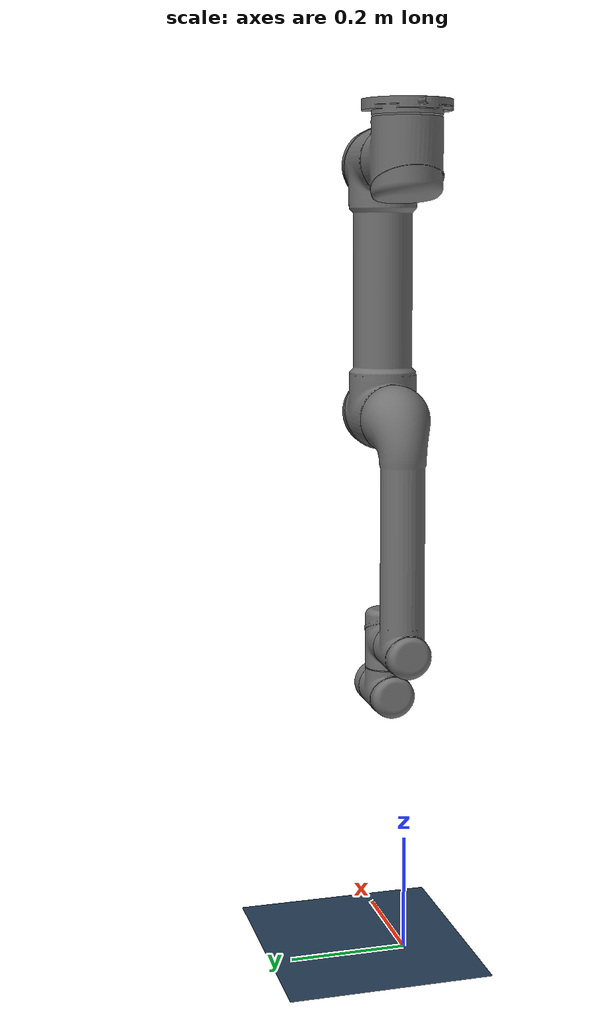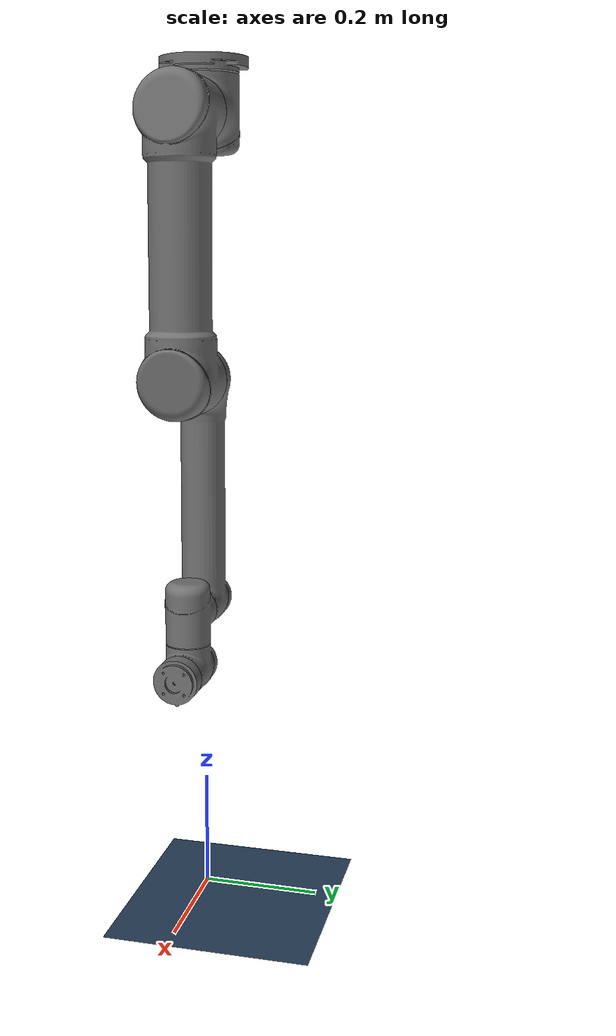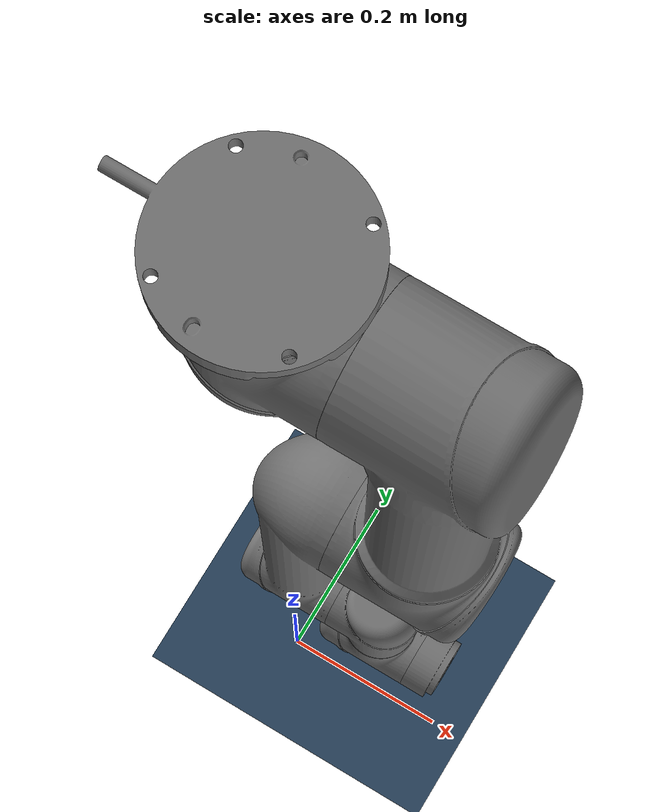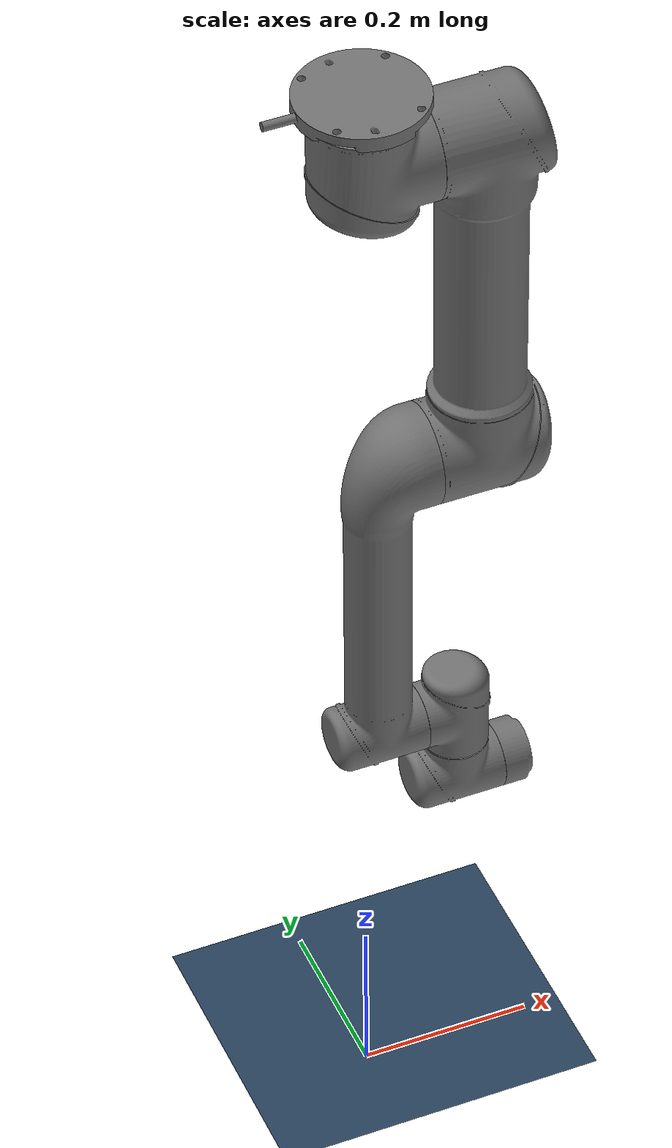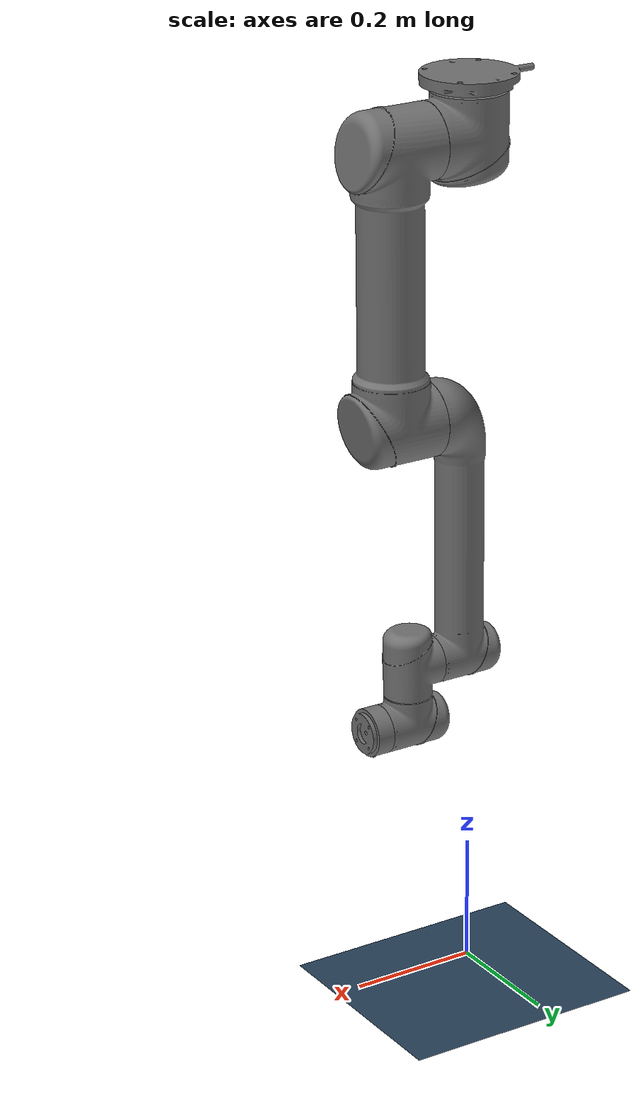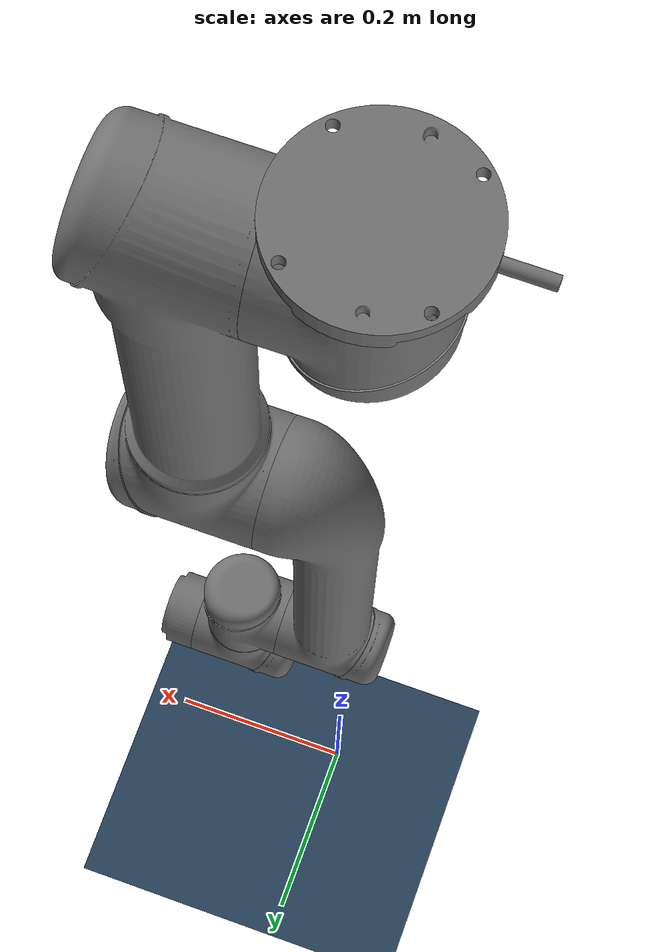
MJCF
<!--Link  MuJoCo modeling: http://www.mujoco.org/book/modeling.html-->

<mujoco model="ur5gripper">
    <compiler angle="radian"
              inertiafromgeom="true"
              texturedir="textures/"
              meshdir="mesh/visual/"/>
    <option timestep="2e-3"
            iterations="10"
            tolerance="1e-10"
            impratio="20"/>
    <size njmax="600" nconmax="150" nstack="300000"/>

    <default>
        <site rgba="0.8 0.6 0.7 0.3" type="ellipsoid" group="3"/>
        <geom contype='1' conaffinity='1' condim='4'  margin="1e-3" solref=".01 1" solimp=".99 .99 .01" />
        <joint armature="0.01" damping=".1"/>
        <default class="UR5">
            <joint damping='65'/>
        </default>
        <default class="UR5e">
            <joint damping='45'/>
        </default>
        <default class="GRIPPER">
            <joint damping='5'/>
        </default>
    </default>

    <visual>
        <map fogstart="3" fogend="5" znear="0.05"/>
        <quality shadowsize="2048"/>
        <scale framelength="0.1"
               framewidth="0.005"
               contactwidth="0.1"
               contactheight="0.005"
               forcewidth="0.01"
               />
    </visual>

    <!--Assets-->
    <asset>
        <!--Meshes-->
        <mesh name="base"           file="base.stl"     />
        <mesh name="shoulder"       file="shoulder.stl" />
        <mesh name="upperarm"       file="upperarm.stl" />
        <mesh name="forearm"        file="forearm.stl"  />
        <mesh name="wrist1"         file="wrist1.stl"   />
        <mesh name="wrist2"         file="wrist2.stl"   />
        <mesh name="wrist3"         file="wrist3.stl"   />

        <!--Textures-->
        <texture name="ur5_tex"     type="2d"       builtin="flat" height="32" width="32" rgb1="0.45 0.45 0.45" />
        <texture name="bench_tex"   type="2d"       builtin="flat" height="32" width="32" rgb1="0.7 0.7 0.7" />
        <texture name="sky_tex"     type="skybox"   builtin="gradient" width="100" height="100" rgb1="1 1 1" rgb2="0.3 0.3 0.8" />
        <texture name="texgeom"     type="cube"     builtin="flat" mark="cross" width="127" height="1278" rgb1="0.8 0.6 0.4" rgb2="0.8 0.6 0.4" markrgb="1 1 1" random="0.01" />
        <texture name="floor_tex"   type="2d"        builtin="checker" rgb1=".2 .3 .4" rgb2=".1 .2 .3" width="100" height="100" />
        <texture name="wood"        type="cube"     file="wood2.png"/>
        <texture name="metal"        type="cube"     file="metal2.png"/>
        <!--Materials-->
        <material name="ur5_mat"        texture="ur5_tex"   shininess="0.9" specular="0.75" reflectance="0.3"/>
        <material name='floor_mat'      texture="floor_tex"  shininess="0.8" texrepeat="10 10" specular="0.7"  reflectance="0.5" />
        <material name='geom'           texture="texgeom"   texuniform="true" />
        <material name="bench_mat"      texture="metal"   shininess="0.1" specular="0.5" reflectance="0.2"/>
        <material name="tablecube"      texture="wood" rgba=".8 .8 .8 1"/>
    </asset>

    <!--Contacts-->
    <contact>
		<exclude body1="base_link" body2="shoulder_link"/>
		<exclude body1="shoulder_link" body2="upper_arm_link"/>
        <exclude body1="upper_arm_link" body2="forearm_link"/>
		<exclude body1="forearm_link" body2="wrist_1_link"/>
		<exclude body1="wrist_1_link" body2="wrist_2_link"/>
        <exclude body1="wrist_2_link" body2="wrist_3_link"/>
    </contact>

    <!--MODEL DESCRIPTION-->
    <worldbody>
        <!--Lighting parameters-->
        <light name="light3" mode="targetbody" target="base_link" directional="true" pos="1 1 3" />
        <!--Camera parameters-->
        <camera name="main1" mode="fixed" target="wrist_3_link" pos="2 2 3.7" axisangle="2 2 -2 1"/>
        <!--Floor Property-->
        <geom name='floor' material="floor_mat" pos='0 0 0' size='2.5 2.5 0.1'  type='plane' />

        <!--Robot UR5-->

            <body name="base_link" pos="0 0 1.435" euler = "3.1415 0 -1.5708" >
                <inertial pos="0 0 0" quat="0.5 0.5 -0.5 0.5" mass="4" diaginertia="0.0072 0.00443333 0.00443333" />
                <geom type="mesh"  mesh="base" material="ur5_mat"/>
                <body name="shoulder_link" pos="0 0 0.089159">
                    <inertial pos="0 0 0" mass="3.7" diaginertia="0.0102675 0.0102675 0.00666" />
                    <joint name="shoulder_pan_joint" class="UR5" pos="0 0 0" axis="0 0 1" limited="true" range="-3.14159 3.14159" />
                    <geom type="mesh"  mesh="shoulder" material="ur5_mat"/>
                    <body name="upper_arm_link" pos="0 0.13585 0" quat="1 0 0 0">
                        <inertial pos="0 0 0.28" mass="8.393" diaginertia="0.226891 0.226891 0.0151074" />
                        <joint name="shoulder_lift_joint" class="UR5" pos="0 0 0" axis="0 1 0" limited="true" range="-3.14159 3.14159" /> <!--Range= -3.14159 3.14159-->
                        <geom type="mesh"  mesh="upperarm" material="ur5_mat"/>
                        <body name="forearm_link" pos="0 -0.1197 0.425">
                            <inertial pos="0 0 0.25" mass="2.275" diaginertia="0.0494433 0.0494433 0.004095" />
                            <joint name="elbow_joint" class="UR5" pos="0 0 0" axis="0 1 0" limited="true" range="-3.14159 3.14159" />
                            <geom type="mesh"  mesh="forearm" material="ur5_mat"/>
                            <body name="wrist_1_link" pos="0 0 0.39225" quat="1 0 0 0">
                                <inertial pos="0 0 0" quat="0.5 0.5 -0.5 0.5" mass="1.219" diaginertia="0.21942 0.111173 0.111173" />
                                <joint name="wrist_1_joint" class="UR5e" pos="0 0 0" axis="0 1 0" limited="true" range="-3.14159 3.14159" />
                                <geom type="mesh"  mesh="wrist1" material="ur5_mat"/>
                                <body name="wrist_2_link" pos="0 0.093 0" quat="1 0 0 0">
                                    <inertial pos="0 0 0" quat="0.5 0.5 -0.5 0.5" mass="1.219" diaginertia="0.21942 0.111173 0.111173" />
                                    <joint name="wrist_2_joint" class="UR5e" pos="0 0 0" axis="0 0 -1" limited="true" range="-3.14159 3.14159" />
                                    <geom type="mesh"  mesh="wrist2" material="ur5_mat"/>
                                    <body name="wrist_3_link" pos="0 0 0.09465" quat = "1 0 0 0">
                                        <inertial pos="0 0 0" quat="0.5 0.5 -0.5 0.5" mass="0.1879" diaginertia="0.033822 0.0171365 0.0171365" />
                                        <joint name="wrist_3_joint" class="UR5e" pos="0 0 0" axis="0 1 0" limited="true" range="-3.14159 3.14159" />
                                        <geom type="mesh"  mesh="wrist3" material="ur5_mat"/>
                                    </body>
                                </body>
                            </body>
                        </body>
                    </body>
                </body>
            </body>
    </worldbody>

    <!--ACTUATORS-->
    <actuator>
        <!--UR5-->
        <position name='shoulder_pan' ctrllimited="true" ctrlrange="-3.14159 3.14159" joint='shoulder_pan_joint' kp="500" kv="20"/>
        <position name='shoulder_lift' ctrllimited="true" ctrlrange="-3.14159 3.14159" joint='shoulder_lift_joint' kp="500" kv="20"/>
        <position name='forearm' ctrllimited="true" ctrlrange="-3.14159 3.14159" joint='elbow_joint' kp="500" kv="20"/>
        <position name='wrist_1' ctrllimited="true" ctrlrange="-3.14159 3.14159" joint='wrist_1_joint' kp="100" kv="5"/>
        <position name='wrist_2' ctrllimited="true" ctrlrange="-3.14159 3.14159" joint='wrist_2_joint' kp="100" kv="5"/>
        <position name='wrist_3' ctrllimited="true" ctrlrange="-3.14159 3.14159" joint='wrist_3_joint' kp="100" kv="5"/>

    </actuator>

    <sensor>
    </sensor>
</mujoco>
